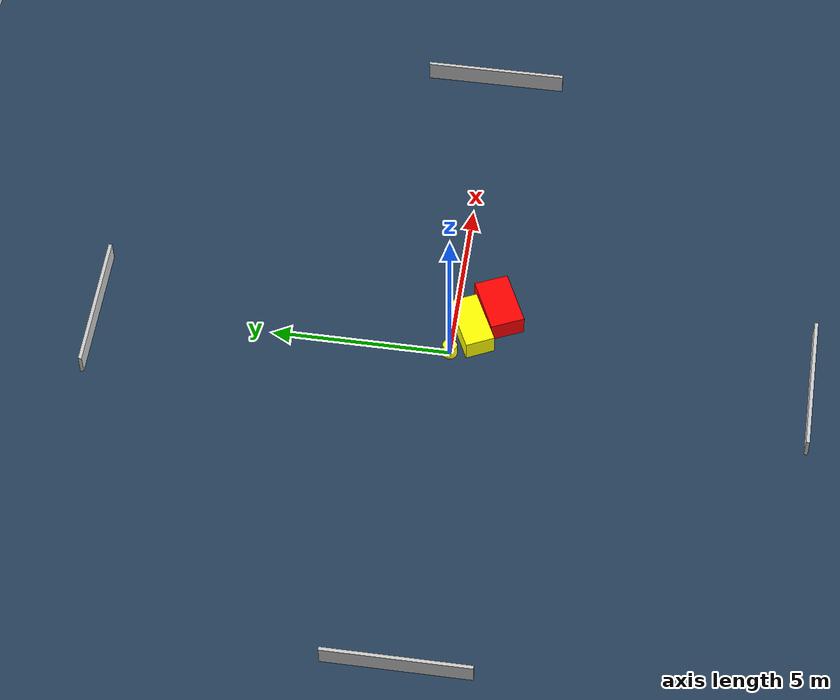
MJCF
<?xml version="1.0" ?>
<mujoco model="generated_environment">
  <option timestep="0.01" integrator="RK4" cone="elliptic"/>
  <default>
    <geom density="1"/>
  </default>
  <asset>
    <texture builtin="gradient" height="3072" name="skybox" rgb1="0.3 0.5 0.7" rgb2="0 0 0" type="skybox" width="512"/>
    <texture builtin="checker" height="300" name="groundplane" rgb1="0.2 0.3 0.4" rgb2="0.1 0.2 0.3" type="2d" width="300"/>
    <material name="groundplane" reflectance="0.2" texrepeat="5 5" texture="groundplane"/>
  </asset>
  <worldbody>
    <light dir="0 0 -1" directional="true" pos="0 0 1.5"/>
    <geom condim="3" friction="0.5 0.005 0.001" material="groundplane" name="floor" pos="0 0 0" size="0 0 0.05" type="plane"/>
    <body name="walls">
      <geom name="wall_1" condim="4" pos="-10.0 0.0 0.3" rgba="0.800000011920929 0.800000011920929 0.800000011920929 1.0" size="0.05 2.0 0.3" type="box"/>
      <geom name="wall_2" condim="4" pos="10.0 0.0 0.3" rgba="0.800000011920929 0.800000011920929 0.800000011920929 1.0" size="0.05 2.0 0.3" type="box"/>
      <geom name="wall_3" condim="4" pos="0.0 -10.0 0.3" rgba="0.800000011920929 0.800000011920929 0.800000011920929 1.0" size="2.0 0.05 0.3" type="box"/>
      <geom name="wall_4" condim="4" pos="0.0 10.0 0.3" rgba="0.800000011920929 0.800000011920929 0.800000011920929 1.0" size="2.0 0.05 0.3" type="box"/>
    </body>
    <body name="robot">
      <joint name="joint_x" type="slide" pos="0 0 0" axis="1 0 0"/>
      <joint name="joint_y" type="slide" pos="0 0 0" axis="0 1 0"/>
      <geom name="robot" type="cylinder" pos="0.0 0.0 0.2" size="0.2 0.2 0.0" mass="5.0" friction="1.0 0.005 0.0001" condim="4" rgba="1.0 1.0 0.0 1.0"/>
    </body>
    <body name="obstacle_1_movable">
      <geom name="obstacle_1_movable" condim="4" pos="0.7952967989591068 -0.4940993291162004 0.3" euler="0 0 295.63648674638296" friction="0.0 0.005 0.001" rgba="1.0 1.0 0.0 1.0" size="0.4121450358154397 0.7942842894964279 0.3" type="box" mass="0.1"/>
      <joint type="free"/>
    </body>
    <body name="obstacle_2_static">
      <geom name="obstacle_2_static" condim="4" pos="1.528403188309946 -1.181332420742632 0.3" euler="0 0 24.63632230935421" friction="0.0 0.005 0.001" rgba="1.0 0.0 0.0 1.0" size="0.7860031525886855 0.4793429025006915 0.3" type="box"/>
    </body>
  </worldbody>
  <actuator>
    <motor name="actuator_x" joint="joint_x" gear="1" ctrlrange="-1 1"/>
    <motor name="actuator_y" joint="joint_y" gear="1" ctrlrange="-1 1"/>
  </actuator>
</mujoco>
